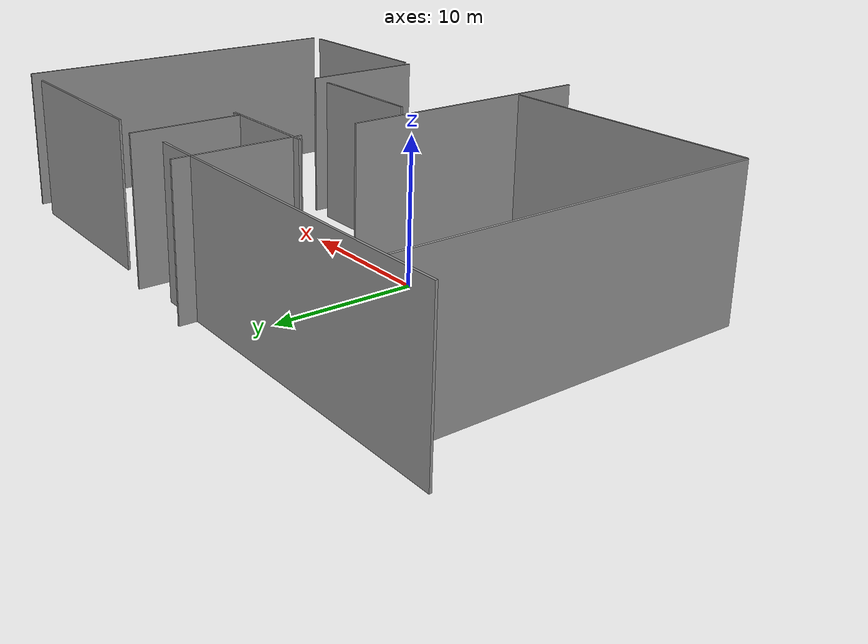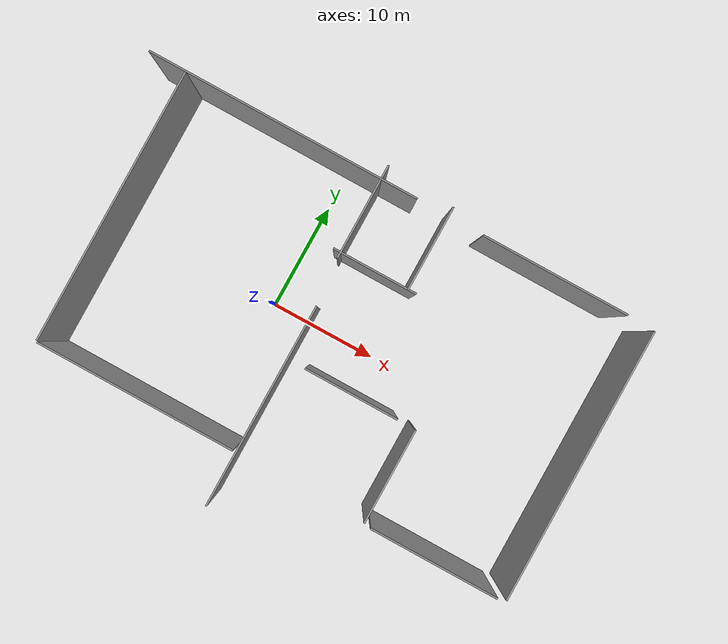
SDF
<sdf version="1.6">
 <world name="default">
  <light name="sun" type="directional">
   <pose>0 0 10 0 -0 0</pose>
   <diffuse>1 1 1 1</diffuse>
   <specular>0.2 0.2 0.2 1</specular>
   <attenuation>
    <range>1000</range>
    <constant>0.9</constant>
    <linear>0.01</linear>
    <quadratic>0.001</quadratic>
   </attenuation>
   <direction>-0.5 0.5 -1</direction>
  </light>
  <scene><ambient>1 1 1 1</ambient><background>0 0 0 0</background><shadows>0</shadows></scene>
  <gravity>0 0 -9.8</gravity>
  <magnetic_field>6e-06 2.3e-05 -4.2e-05</magnetic_field>
  <atmosphere type="adiabatic"/>
  <audio><device>default</device></audio>
  <plugin name="ros_interface_plugin" filename="librotors_gazebo_ros_interface_plugin.so"/>
  <spherical_coordinates>
   <surface_model>EARTH_WGS84</surface_model>
   <latitude_deg>47.3667</latitude_deg>
   <longitude_deg>8.55</longitude_deg>
   <elevation>500</elevation>
   <heading_deg>0</heading_deg>
  </spherical_coordinates>
  <physics name="default_physics" default="0" type="ode">
   <ode>
    <solver>
     <type>quick</type>
     <iters>1000</iters>
     <sor>1.3</sor>
     <use_dynamic_moi_rescaling>0</use_dynamic_moi_rescaling>
    </solver>
    <constraints>
     <cfm>0</cfm>
     <erp>0.2</erp>
     <contact_max_correcting_vel>100</contact_max_correcting_vel>
     <contact_surface_layer>0.001</contact_surface_layer>
    </constraints>
   </ode>
   <max_step_size>0.01</max_step_size>
   <real_time_factor>1</real_time_factor>
   <real_time_update_rate>100</real_time_update_rate>
  </physics>
  <model name="Wall_clone">
   <link name="link_0">
    <inertial>
     <mass>0.467221</mass>
     <inertia>
      <ixx>0.0398434</ixx>
      <ixy>0</ixy>
      <ixz>0</ixz>
      <iyy>0.391224</iyy>
      <iyz>0</iyz>
      <izz>0.353198</izz>
     </inertia>
    </inertial>
    <visual name="visual">
     <geometry><box><size>25.2956 0.152736 10.2725</size></box></geometry>
     <material>
      <lighting>1</lighting>
      <script><uri>file://media/materials/scripts/gazebo.material</uri><name>Gazebo/Grey</name></script>
     </material>
    </visual>
    <collision name="collision">
     <geometry><box><size>25.2956 0.152736 10.2725</size></box></geometry>
     <surface>
      <friction>
       <ode><mu>1</mu><mu2>1</mu2><fdir1>0 0 0</fdir1><slip1>0</slip1><slip2>0</slip2></ode>
       <torsional>
        <coefficient>1</coefficient>
        <patch_radius>0</patch_radius>
        <surface_radius>0</surface_radius>
        <use_patch_radius>1</use_patch_radius>
        <ode><slip>0</slip></ode>
       </torsional>
      </friction>
      <bounce><restitution_coefficient>0</restitution_coefficient><threshold>1e+06</threshold></bounce>
      <contact>
       <collide_without_contact>0</collide_without_contact>
       <collide_without_contact_bitmask>1</collide_without_contact_bitmask>
       <collide_bitmask>1</collide_bitmask>
       <ode>
        <soft_cfm>0</soft_cfm>
        <soft_erp>0.2</soft_erp>
        <kp>1e+13</kp>
        <kd>1</kd>
        <max_vel>0.01</max_vel>
        <min_depth>0</min_depth>
       </ode>
       <bullet>
        <split_impulse>1</split_impulse>
        <split_impulse_penetration_threshold>-0.01</split_impulse_penetration_threshold>
        <soft_cfm>0</soft_cfm>
        <soft_erp>0.2</soft_erp>
        <kp>1e+13</kp>
        <kd>1</kd>
       </bullet>
      </contact>
     </surface>
    </collision>
   </link>
   <static>1</static>
   <pose>29.0942 0.582122 5.05164 0 0 -1.5708</pose>
  </model>
  <model name="Wall_clone_clone">
   <link name="link_0">
    <inertial>
     <mass>0.467221</mass>
     <inertia>
      <ixx>0.0398434</ixx>
      <ixy>0</ixy>
      <ixz>0</ixz>
      <iyy>0.391224</iyy>
      <iyz>0</iyz>
      <izz>0.353198</izz>
     </inertia>
    </inertial>
    <visual name="visual">
     <geometry><box><size>25.2956 0.152736 10.2725</size></box></geometry>
     <material>
      <lighting>1</lighting>
      <script><uri>file://media/materials/scripts/gazebo.material</uri><name>Gazebo/Grey</name></script>
     </material>
    </visual>
    <collision name="collision">
     <geometry><box><size>25.2956 0.152736 10.2725</size></box></geometry>
     <surface>
      <friction>
       <ode><mu>1</mu><mu2>1</mu2><fdir1>0 0 0</fdir1><slip1>0</slip1><slip2>0</slip2></ode>
       <torsional>
        <coefficient>1</coefficient>
        <patch_radius>0</patch_radius>
        <surface_radius>0</surface_radius>
        <use_patch_radius>1</use_patch_radius>
        <ode><slip>0</slip></ode>
       </torsional>
      </friction>
      <bounce><restitution_coefficient>0</restitution_coefficient><threshold>1e+06</threshold></bounce>
      <contact>
       <collide_without_contact>0</collide_without_contact>
       <collide_without_contact_bitmask>1</collide_without_contact_bitmask>
       <collide_bitmask>1</collide_bitmask>
       <ode>
        <soft_cfm>0</soft_cfm>
        <soft_erp>0.2</soft_erp>
        <kp>1e+13</kp>
        <kd>1</kd>
        <max_vel>0.01</max_vel>
        <min_depth>0</min_depth>
       </ode>
       <bullet>
        <split_impulse>1</split_impulse>
        <split_impulse_penetration_threshold>-0.01</split_impulse_penetration_threshold>
        <soft_cfm>0</soft_cfm>
        <soft_erp>0.2</soft_erp>
        <kp>1e+13</kp>
        <kd>1</kd>
       </bullet>
      </contact>
     </surface>
    </collision>
   </link>
   <static>1</static>
   <pose>-15.1083 0.607308 5.05164 0 0 -1.5708</pose>
  </model>
  <model name="Wall_clone_clone_0">
   <link name="link_0">
    <inertial>
     <mass>0.467221</mass>
     <inertia>
      <ixx>0.0398434</ixx>
      <ixy>0</ixy>
      <ixz>0</ixz>
      <iyy>0.391224</iyy>
      <iyz>0</iyz>
      <izz>0.353198</izz>
     </inertia>
    </inertial>
    <visual name="visual">
     <geometry><box><size>25.2956 0.152736 10.2725</size></box></geometry>
     <material>
      <lighting>1</lighting>
      <script><uri>file://media/materials/scripts/gazebo.material</uri><name>Gazebo/Grey</name></script>
     </material>
    </visual>
    <collision name="collision">
     <geometry><box><size>25.2956 0.152736 10.2725</size></box></geometry>
     <surface>
      <friction>
       <ode><mu>1</mu><mu2>1</mu2><fdir1>0 0 0</fdir1><slip1>0</slip1><slip2>0</slip2></ode>
       <torsional>
        <coefficient>1</coefficient>
        <patch_radius>0</patch_radius>
        <surface_radius>0</surface_radius>
        <use_patch_radius>1</use_patch_radius>
        <ode><slip>0</slip></ode>
       </torsional>
      </friction>
      <bounce><restitution_coefficient>0</restitution_coefficient><threshold>1e+06</threshold></bounce>
      <contact>
       <collide_without_contact>0</collide_without_contact>
       <collide_without_contact_bitmask>1</collide_without_contact_bitmask>
       <collide_bitmask>1</collide_bitmask>
       <ode>
        <soft_cfm>0</soft_cfm>
        <soft_erp>0.2</soft_erp>
        <kp>1e+13</kp>
        <kd>1</kd>
        <max_vel>0.01</max_vel>
        <min_depth>0</min_depth>
       </ode>
       <bullet>
        <split_impulse>1</split_impulse>
        <split_impulse_penetration_threshold>-0.01</split_impulse_penetration_threshold>
        <soft_cfm>0</soft_cfm>
        <soft_erp>0.2</soft_erp>
        <kp>1e+13</kp>
        <kd>1</kd>
       </bullet>
      </contact>
     </surface>
    </collision>
   </link>
   <static>1</static>
   <pose>-5.94286 13.3498 5.05164 0 0 -4e-06</pose>
  </model>
  <model name="Wall_clone_clone_0_clone">
   <link name="link_0">
    <inertial>
     <mass>0.467221</mass>
     <inertia>
      <ixx>0.0398434</ixx>
      <ixy>0</ixy>
      <ixz>0</ixz>
      <iyy>0.391224</iyy>
      <iyz>0</iyz>
      <izz>0.353198</izz>
     </inertia>
    </inertial>
    <visual name="visual">
     <geometry><box><size>18.4483 0.152736 10.2725</size></box></geometry>
     <material>
      <lighting>1</lighting>
      <script><uri>file://media/materials/scripts/gazebo.material</uri><name>Gazebo/Grey</name></script>
     </material>
    </visual>
    <collision name="collision">
     <geometry><box><size>18.4483 0.152736 10.2725</size></box></geometry>
     <surface>
      <friction>
       <ode><mu>1</mu><mu2>1</mu2><fdir1>0 0 0</fdir1><slip1>0</slip1><slip2>0</slip2></ode>
       <torsional>
        <coefficient>1</coefficient>
        <patch_radius>0</patch_radius>
        <surface_radius>0</surface_radius>
        <use_patch_radius>1</use_patch_radius>
        <ode><slip>0</slip></ode>
       </torsional>
      </friction>
      <bounce><restitution_coefficient>0</restitution_coefficient><threshold>1e+06</threshold></bounce>
      <contact>
       <collide_without_contact>0</collide_without_contact>
       <collide_without_contact_bitmask>1</collide_without_contact_bitmask>
       <collide_bitmask>1</collide_bitmask>
       <ode>
        <soft_cfm>0</soft_cfm>
        <soft_erp>0.2</soft_erp>
        <kp>1e+13</kp>
        <kd>1</kd>
        <max_vel>0.01</max_vel>
        <min_depth>0</min_depth>
       </ode>
       <bullet>
        <split_impulse>1</split_impulse>
        <split_impulse_penetration_threshold>-0.01</split_impulse_penetration_threshold>
        <soft_cfm>0</soft_cfm>
        <soft_erp>0.2</soft_erp>
        <kp>1e+13</kp>
        <kd>1</kd>
       </bullet>
      </contact>
     </surface>
    </collision>
   </link>
   <static>1</static>
   <pose>-5.7854 -12.1547 5.05164 0 0 -4e-06</pose>
  </model>
  <model name="Wall_clone_clone_0_clone_clone">
   <link name="link_0">
    <inertial>
     <mass>0.467221</mass>
     <inertia>
      <ixx>0.0398434</ixx>
      <ixy>0</ixy>
      <ixz>0</ixz>
      <iyy>0.391224</iyy>
      <iyz>0</iyz>
      <izz>0.353198</izz>
     </inertia>
    </inertial>
    <visual name="visual">
     <geometry><box><size>18.7996 0.152736 10.2725</size></box></geometry>
     <material>
      <lighting>1</lighting>
      <script><uri>file://media/materials/scripts/gazebo.material</uri><name>Gazebo/Grey</name></script>
     </material>
    </visual>
    <collision name="collision">
     <geometry><box><size>18.7996 0.152736 10.2725</size></box></geometry>
     <surface>
      <friction>
       <ode><mu>1</mu><mu2>1</mu2><fdir1>0 0 0</fdir1><slip1>0</slip1><slip2>0</slip2></ode>
       <torsional>
        <coefficient>1</coefficient>
        <patch_radius>0</patch_radius>
        <surface_radius>0</surface_radius>
        <use_patch_radius>1</use_patch_radius>
        <ode><slip>0</slip></ode>
       </torsional>
      </friction>
      <bounce><restitution_coefficient>0</restitution_coefficient><threshold>1e+06</threshold></bounce>
      <contact>
       <collide_without_contact>0</collide_without_contact>
       <collide_without_contact_bitmask>1</collide_without_contact_bitmask>
       <collide_bitmask>1</collide_bitmask>
       <ode>
        <soft_cfm>0</soft_cfm>
        <soft_erp>0.2</soft_erp>
        <kp>1e+13</kp>
        <kd>1</kd>
        <max_vel>0.01</max_vel>
        <min_depth>0</min_depth>
       </ode>
       <bullet>
        <split_impulse>1</split_impulse>
        <split_impulse_penetration_threshold>-0.01</split_impulse_penetration_threshold>
        <soft_cfm>0</soft_cfm>
        <soft_erp>0.2</soft_erp>
        <kp>1e+13</kp>
        <kd>1</kd>
       </bullet>
      </contact>
     </surface>
    </collision>
   </link>
   <static>1</static>
   <pose>3.70345 -7.81343 5.05164 0 0 -1.5708</pose>
  </model>
  <model name="Wall_clone_clone_0_clone_clone_clone">
   <link name="link_0">
    <inertial>
     <mass>0.467221</mass>
     <inertia>
      <ixx>0.0398434</ixx>
      <ixy>0</ixy>
      <ixz>0</ixz>
      <iyy>0.391224</iyy>
      <iyz>0</iyz>
      <izz>0.353198</izz>
     </inertia>
    </inertial>
    <visual name="visual">
     <geometry><box><size>8.74287 0.152736 10.2725</size></box></geometry>
     <material>
      <lighting>1</lighting>
      <script><uri>file://media/materials/scripts/gazebo.material</uri><name>Gazebo/Grey</name></script>
     </material>
    </visual>
    <collision name="collision">
     <geometry><box><size>8.74287 0.152736 10.2725</size></box></geometry>
     <surface>
      <friction>
       <ode><mu>1</mu><mu2>1</mu2><fdir1>0 0 0</fdir1><slip1>0</slip1><slip2>0</slip2></ode>
       <torsional>
        <coefficient>1</coefficient>
        <patch_radius>0</patch_radius>
        <surface_radius>0</surface_radius>
        <use_patch_radius>1</use_patch_radius>
        <ode><slip>0</slip></ode>
       </torsional>
      </friction>
      <bounce><restitution_coefficient>0</restitution_coefficient><threshold>1e+06</threshold></bounce>
      <contact>
       <collide_without_contact>0</collide_without_contact>
       <collide_without_contact_bitmask>1</collide_without_contact_bitmask>
       <collide_bitmask>1</collide_bitmask>
       <ode>
        <soft_cfm>0</soft_cfm>
        <soft_erp>0.2</soft_erp>
        <kp>1e+13</kp>
        <kd>1</kd>
        <max_vel>0.01</max_vel>
        <min_depth>0</min_depth>
       </ode>
       <bullet>
        <split_impulse>1</split_impulse>
        <split_impulse_penetration_threshold>-0.01</split_impulse_penetration_threshold>
        <soft_cfm>0</soft_cfm>
        <soft_erp>0.2</soft_erp>
        <kp>1e+13</kp>
        <kd>1</kd>
       </bullet>
      </contact>
     </surface>
    </collision>
   </link>
   <static>1</static>
   <pose>15.7837 -7.77575 5.05164 0 0 -1.5708</pose>
  </model>
  <model name="Wall_clone_clone_0_clone_clone_clone_0">
   <link name="link_0">
    <inertial>
     <mass>0.467221</mass>
     <inertia>
      <ixx>0.0398434</ixx>
      <ixy>0</ixy>
      <ixz>0</ixz>
      <iyy>0.391224</iyy>
      <iyz>0</iyz>
      <izz>0.353198</izz>
     </inertia>
    </inertial>
    <visual name="visual">
     <geometry><box><size>8.74287 0.152736 10.2725</size></box></geometry>
     <material>
      <lighting>1</lighting>
      <script><uri>file://media/materials/scripts/gazebo.material</uri><name>Gazebo/Grey</name></script>
     </material>
    </visual>
    <collision name="collision">
     <geometry><box><size>8.74287 0.152736 10.2725</size></box></geometry>
     <surface>
      <friction>
       <ode><mu>1</mu><mu2>1</mu2><fdir1>0 0 0</fdir1><slip1>0</slip1><slip2>0</slip2></ode>
       <torsional>
        <coefficient>1</coefficient>
        <patch_radius>0</patch_radius>
        <surface_radius>0</surface_radius>
        <use_patch_radius>1</use_patch_radius>
        <ode><slip>0</slip></ode>
       </torsional>
      </friction>
      <bounce><restitution_coefficient>0</restitution_coefficient><threshold>1e+06</threshold></bounce>
      <contact>
       <collide_without_contact>0</collide_without_contact>
       <collide_without_contact_bitmask>1</collide_without_contact_bitmask>
       <collide_bitmask>1</collide_bitmask>
       <ode>
        <soft_cfm>0</soft_cfm>
        <soft_erp>0.2</soft_erp>
        <kp>1e+13</kp>
        <kd>1</kd>
        <max_vel>0.01</max_vel>
        <min_depth>0</min_depth>
       </ode>
       <bullet>
        <split_impulse>1</split_impulse>
        <split_impulse_penetration_threshold>-0.01</split_impulse_penetration_threshold>
        <soft_cfm>0</soft_cfm>
        <soft_erp>0.2</soft_erp>
        <kp>1e+13</kp>
        <kd>1</kd>
       </bullet>
      </contact>
     </surface>
    </collision>
   </link>
   <static>1</static>
   <pose>9.72292 -3.37629 5.05164 0 -0 3.14159</pose>
  </model>
  <model name="Wall_clone_clone_0_clone_clone_clone_0_clone">
   <link name="link_0">
    <inertial>
     <mass>0.467221</mass>
     <inertia>
      <ixx>0.0398434</ixx>
      <ixy>0</ixy>
      <ixz>0</ixz>
      <iyy>0.391224</iyy>
      <iyz>0</iyz>
      <izz>0.353198</izz>
     </inertia>
    </inertial>
    <visual name="visual">
     <geometry><box><size>11.9407 0.152736 10.2725</size></box></geometry>
     <material>
      <lighting>1</lighting>
      <script><uri>file://media/materials/scripts/gazebo.material</uri><name>Gazebo/Grey</name></script>
     </material>
    </visual>
    <collision name="collision">
     <geometry><box><size>11.9407 0.152736 10.2725</size></box></geometry>
     <surface>
      <friction>
       <ode><mu>1</mu><mu2>1</mu2><fdir1>0 0 0</fdir1><slip1>0</slip1><slip2>0</slip2></ode>
       <torsional>
        <coefficient>1</coefficient>
        <patch_radius>0</patch_radius>
        <surface_radius>0</surface_radius>
        <use_patch_radius>1</use_patch_radius>
        <ode><slip>0</slip></ode>
       </torsional>
      </friction>
      <bounce><restitution_coefficient>0</restitution_coefficient><threshold>1e+06</threshold></bounce>
      <contact>
       <collide_without_contact>0</collide_without_contact>
       <collide_without_contact_bitmask>1</collide_without_contact_bitmask>
       <collide_bitmask>1</collide_bitmask>
       <ode>
        <soft_cfm>0</soft_cfm>
        <soft_erp>0.2</soft_erp>
        <kp>1e+13</kp>
        <kd>1</kd>
        <max_vel>0.01</max_vel>
        <min_depth>0</min_depth>
       </ode>
       <bullet>
        <split_impulse>1</split_impulse>
        <split_impulse_penetration_threshold>-0.01</split_impulse_penetration_threshold>
        <soft_cfm>0</soft_cfm>
        <soft_erp>0.2</soft_erp>
        <kp>1e+13</kp>
        <kd>1</kd>
       </bullet>
      </contact>
     </surface>
    </collision>
   </link>
   <static>1</static>
   <pose>22.4064 -12.2837 5.05164 0 -0 3.14159</pose>
  </model>
  <model name="Wall_clone_clone_0_clone_clone_clone_0_clone_clone">
   <link name="link_0">
    <inertial>
     <mass>0.467221</mass>
     <inertia>
      <ixx>0.0398434</ixx>
      <ixy>0</ixy>
      <ixz>0</ixz>
      <iyy>0.391224</iyy>
      <iyz>0</iyz>
      <izz>0.353198</izz>
     </inertia>
    </inertial>
    <visual name="visual">
     <geometry><box><size>13.6235 0.152736 10.2725</size></box></geometry>
     <material>
      <lighting>1</lighting>
      <script><uri>file://media/materials/scripts/gazebo.material</uri><name>Gazebo/Grey</name></script>
     </material>
    </visual>
    <collision name="collision">
     <geometry><box><size>13.6235 0.152736 10.2725</size></box></geometry>
     <surface>
      <friction>
       <ode><mu>1</mu><mu2>1</mu2><fdir1>0 0 0</fdir1><slip1>0</slip1><slip2>0</slip2></ode>
       <torsional>
        <coefficient>1</coefficient>
        <patch_radius>0</patch_radius>
        <surface_radius>0</surface_radius>
        <use_patch_radius>1</use_patch_radius>
        <ode><slip>0</slip></ode>
       </torsional>
      </friction>
      <bounce><restitution_coefficient>0</restitution_coefficient><threshold>1e+06</threshold></bounce>
      <contact>
       <collide_without_contact>0</collide_without_contact>
       <collide_without_contact_bitmask>1</collide_without_contact_bitmask>
       <collide_bitmask>1</collide_bitmask>
       <ode>
        <soft_cfm>0</soft_cfm>
        <soft_erp>0.2</soft_erp>
        <kp>1e+13</kp>
        <kd>1</kd>
        <max_vel>0.01</max_vel>
        <min_depth>0</min_depth>
       </ode>
       <bullet>
        <split_impulse>1</split_impulse>
        <split_impulse_penetration_threshold>-0.01</split_impulse_penetration_threshold>
        <soft_cfm>0</soft_cfm>
        <soft_erp>0.2</soft_erp>
        <kp>1e+13</kp>
        <kd>1</kd>
       </bullet>
      </contact>
     </surface>
    </collision>
   </link>
   <static>1</static>
   <pose>19.728 13.3426 5.05164 0 -0 3.14159</pose>
  </model>
  <model name="Wall_clone_clone_0_clone_clone_clone_1">
   <link name="link_0">
    <inertial>
     <mass>0.467221</mass>
     <inertia>
      <ixx>0.0398434</ixx>
      <ixy>0</ixy>
      <ixz>0</ixz>
      <iyy>0.391224</iyy>
      <iyz>0</iyz>
      <izz>0.353198</izz>
     </inertia>
    </inertial>
    <visual name="visual">
     <geometry><box><size>8.74287 0.152736 10.2725</size></box></geometry>
     <material>
      <lighting>1</lighting>
      <script><uri>file://media/materials/scripts/gazebo.material</uri><name>Gazebo/Grey</name></script>
     </material>
    </visual>
    <collision name="collision">
     <geometry><box><size>8.74287 0.152736 10.2725</size></box></geometry>
     <surface>
      <friction>
       <ode><mu>1</mu><mu2>1</mu2><fdir1>0 0 0</fdir1><slip1>0</slip1><slip2>0</slip2></ode>
       <torsional>
        <coefficient>1</coefficient>
        <patch_radius>0</patch_radius>
        <surface_radius>0</surface_radius>
        <use_patch_radius>1</use_patch_radius>
        <ode><slip>0</slip></ode>
       </torsional>
      </friction>
      <bounce><restitution_coefficient>0</restitution_coefficient><threshold>1e+06</threshold></bounce>
      <contact>
       <collide_without_contact>0</collide_without_contact>
       <collide_without_contact_bitmask>1</collide_without_contact_bitmask>
       <collide_bitmask>1</collide_bitmask>
       <ode>
        <soft_cfm>0</soft_cfm>
        <soft_erp>0.2</soft_erp>
        <kp>1e+13</kp>
        <kd>1</kd>
        <max_vel>0.01</max_vel>
        <min_depth>0</min_depth>
       </ode>
       <bullet>
        <split_impulse>1</split_impulse>
        <split_impulse_penetration_threshold>-0.01</split_impulse_penetration_threshold>
        <soft_cfm>0</soft_cfm>
        <soft_erp>0.2</soft_erp>
        <kp>1e+13</kp>
        <kd>1</kd>
       </bullet>
      </contact>
     </surface>
    </collision>
   </link>
   <static>1</static>
   <pose>3.2879 10.2519 5.05164 0 0 -1.5708</pose>
  </model>
  <model name="Wall_clone_clone_0_clone_clone_clone_1_clone">
   <link name="link_0">
    <inertial>
     <mass>0.467221</mass>
     <inertia>
      <ixx>0.0398434</ixx>
      <ixy>0</ixy>
      <ixz>0</ixz>
      <iyy>0.391224</iyy>
      <iyz>0</iyz>
      <izz>0.353198</izz>
     </inertia>
    </inertial>
    <visual name="visual">
     <geometry><box><size>7.81661 0.152736 10.2725</size></box></geometry>
     <material>
      <lighting>1</lighting>
      <script><uri>file://media/materials/scripts/gazebo.material</uri><name>Gazebo/Grey</name></script>
     </material>
    </visual>
    <collision name="collision">
     <geometry><box><size>7.81661 0.152736 10.2725</size></box></geometry>
     <surface>
      <friction>
       <ode><mu>1</mu><mu2>1</mu2><fdir1>0 0 0</fdir1><slip1>0</slip1><slip2>0</slip2></ode>
       <torsional>
        <coefficient>1</coefficient>
        <patch_radius>0</patch_radius>
        <surface_radius>0</surface_radius>
        <use_patch_radius>1</use_patch_radius>
        <ode><slip>0</slip></ode>
       </torsional>
      </friction>
      <bounce><restitution_coefficient>0</restitution_coefficient><threshold>1e+06</threshold></bounce>
      <contact>
       <collide_without_contact>0</collide_without_contact>
       <collide_without_contact_bitmask>1</collide_without_contact_bitmask>
       <collide_bitmask>1</collide_bitmask>
       <ode>
        <soft_cfm>0</soft_cfm>
        <soft_erp>0.2</soft_erp>
        <kp>1e+13</kp>
        <kd>1</kd>
        <max_vel>0.01</max_vel>
        <min_depth>0</min_depth>
       </ode>
       <bullet>
        <split_impulse>1</split_impulse>
        <split_impulse_penetration_threshold>-0.01</split_impulse_penetration_threshold>
        <soft_cfm>0</soft_cfm>
        <soft_erp>0.2</soft_erp>
        <kp>1e+13</kp>
        <kd>1</kd>
       </bullet>
      </contact>
     </surface>
    </collision>
   </link>
   <static>1</static>
   <pose>6.51204 6.43694 5.05164 0 -0 3.14159</pose>
  </model>
  <model name="Wall_clone_clone_0_clone_clone_clone_1_clone_0">
   <link name="link_0">
    <inertial>
     <mass>0.467221</mass>
     <inertia>
      <ixx>0.0398434</ixx>
      <ixy>0</ixy>
      <ixz>0</ixz>
      <iyy>0.391224</iyy>
      <iyz>0</iyz>
      <izz>0.353198</izz>
     </inertia>
    </inertial>
    <visual name="visual">
     <geometry><box><size>7.81662 0.152736 10.2725</size></box></geometry>
     <material>
      <lighting>1</lighting>
      <script><uri>file://media/materials/scripts/gazebo.material</uri><name>Gazebo/Grey</name></script>
     </material>
    </visual>
    <collision name="collision">
     <geometry><box><size>7.81662 0.152736 10.2725</size></box></geometry>
     <surface>
      <friction>
       <ode><mu>1</mu><mu2>1</mu2><fdir1>0 0 0</fdir1><slip1>0</slip1><slip2>0</slip2></ode>
       <torsional>
        <coefficient>1</coefficient>
        <patch_radius>0</patch_radius>
        <surface_radius>0</surface_radius>
        <use_patch_radius>1</use_patch_radius>
        <ode><slip>0</slip></ode>
       </torsional>
      </friction>
      <bounce><restitution_coefficient>0</restitution_coefficient><threshold>1e+06</threshold></bounce>
      <contact>
       <collide_without_contact>0</collide_without_contact>
       <collide_without_contact_bitmask>1</collide_without_contact_bitmask>
       <collide_bitmask>1</collide_bitmask>
       <ode>
        <soft_cfm>0</soft_cfm>
        <soft_erp>0.2</soft_erp>
        <kp>1e+13</kp>
        <kd>1</kd>
        <max_vel>0.01</max_vel>
        <min_depth>0</min_depth>
       </ode>
       <bullet>
        <split_impulse>1</split_impulse>
        <split_impulse_penetration_threshold>-0.01</split_impulse_penetration_threshold>
        <soft_cfm>0</soft_cfm>
        <soft_erp>0.2</soft_erp>
        <kp>1e+13</kp>
        <kd>1</kd>
       </bullet>
      </contact>
     </surface>
    </collision>
   </link>
   <static>1</static>
   <pose>9.64965 10.2933 5.05164 0 0 -1.5708</pose>
  </model>
 </world>
</sdf>
